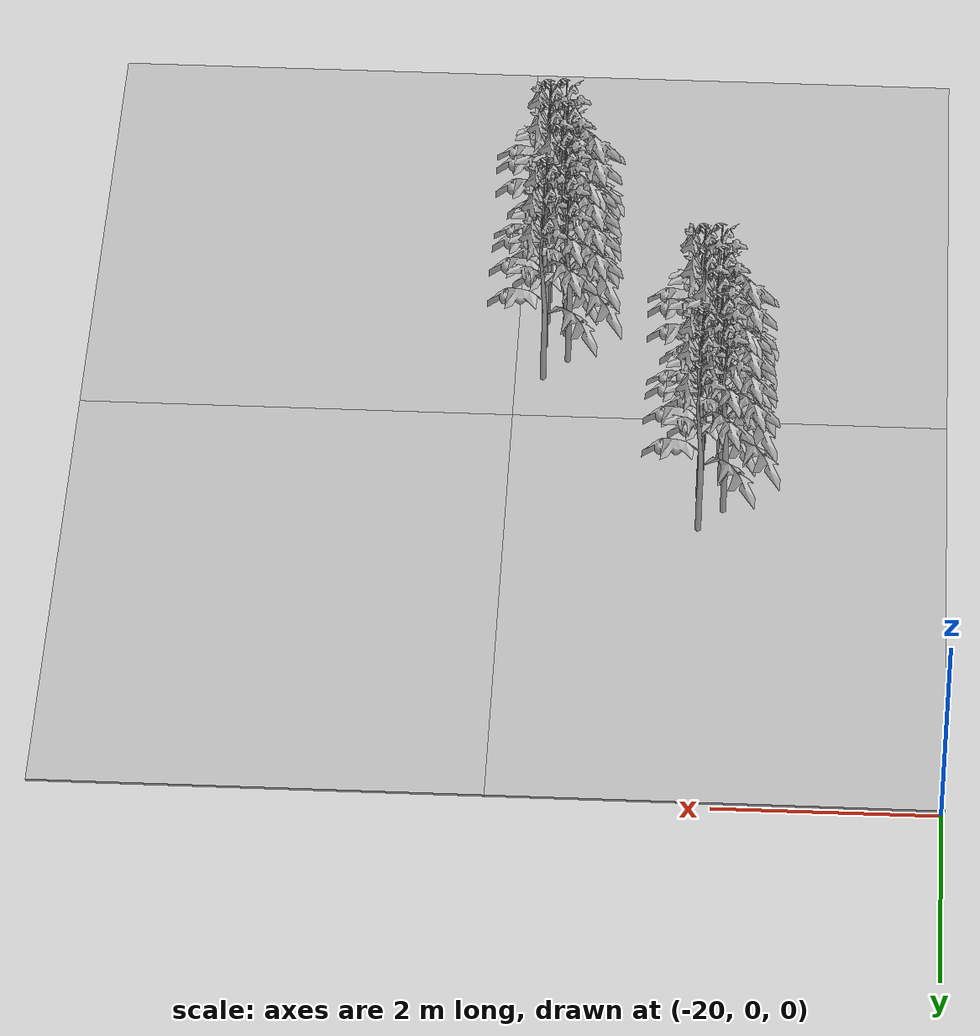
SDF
<sdf version="1.6">
 <world name="default">
  <model name="ground_plane">
   <static>1</static>
   <link name="link">
    <collision name="collision">
     <geometry><plane><normal>0 0 1</normal><size>100 100</size></plane></geometry>
     <surface>
      <contact><collide_bitmask>65535</collide_bitmask></contact>
      <friction><ode><mu>100</mu><mu2>50</mu2></ode></friction>
     </surface>
    </collision>
    <visual name="visual">
     <cast_shadows>0</cast_shadows>
     <geometry><plane><normal>0 0 1</normal><size>100 100</size></plane></geometry>
     <material>
      <script><uri>file://media/materials/scripts/gazebo.material</uri><name>Gazebo/Grey</name></script>
     </material>
    </visual>
   </link>
  </model>
  <model name="Middle_Plant_1">
   <model name="tomato_plant_big">
    <static>1</static>
    <link name="link">
     <collision name="collision">
      <geometry>
       <mesh><scale>5e-06 5e-06 6e-06</scale><uri>model://tomato_plant_big/meshes/tomato-plant.dae</uri></mesh>
      </geometry>
     </collision>
     <visual name="visual">
      <geometry>
       <mesh><scale>5e-06 5e-06 7e-06</scale><uri>model://tomato_plant_big/meshes/tomato-plant.dae</uri></mesh>
      </geometry>
     </visual>
    </link>
    <pose>0.085326 1.23023 0 0 -0 0</pose>
   </model>
   <model name="tomato_plant_big_0">
    <static>1</static>
    <link name="link">
     <collision name="collision">
      <geometry>
       <mesh><scale>5e-06 5e-06 6e-06</scale><uri>model://tomato_plant_big/meshes/tomato-plant.dae</uri></mesh>
      </geometry>
     </collision>
     <visual name="visual">
      <geometry>
       <mesh><scale>5e-06 5e-06 7e-06</scale><uri>model://tomato_plant_big/meshes/tomato-plant.dae</uri></mesh>
      </geometry>
     </visual>
    </link>
    <pose>-0.133881 0.970183 0 0 -0 0</pose>
   </model>
   <model name="tomato_plant_big_1">
    <static>1</static>
    <link name="link">
     <collision name="collision">
      <geometry>
       <mesh><scale>5e-06 5e-06 6e-06</scale><uri>model://tomato_plant_big/meshes/tomato-plant.dae</uri></mesh>
      </geometry>
     </collision>
     <visual name="visual">
      <geometry>
       <mesh><scale>5e-06 5e-06 7e-06</scale><uri>model://tomato_plant_big/meshes/tomato-plant.dae</uri></mesh>
      </geometry>
     </visual>
    </link>
    <pose>0.091162 0.792381 0 0 -0 0</pose>
   </model>
   <model name="tomato_plant_big_2">
    <static>1</static>
    <link name="link">
     <collision name="collision">
      <geometry>
       <mesh><scale>5e-06 5e-06 6e-06</scale><uri>model://tomato_plant_big/meshes/tomato-plant.dae</uri></mesh>
      </geometry>
     </collision>
     <visual name="visual">
      <geometry>
       <mesh><scale>5e-06 5e-06 7e-06</scale><uri>model://tomato_plant_big/meshes/tomato-plant.dae</uri></mesh>
      </geometry>
     </visual>
    </link>
    <pose>-0.099228 0.602587 0 0 -0 0</pose>
   </model>
   <model name="tomato_plant_big_3">
    <static>1</static>
    <link name="link">
     <collision name="collision">
      <geometry>
       <mesh><scale>5e-06 5e-06 6e-06</scale><uri>model://tomato_plant_big/meshes/tomato-plant.dae</uri></mesh>
      </geometry>
     </collision>
     <visual name="visual">
      <geometry>
       <mesh><scale>5e-06 5e-06 7e-06</scale><uri>model://tomato_plant_big/meshes/tomato-plant.dae</uri></mesh>
      </geometry>
     </visual>
    </link>
    <pose>0.083199 0.447645 0 0 -0 0</pose>
   </model>
   <model name="tomato_plant_big_4">
    <static>1</static>
    <link name="link">
     <collision name="collision">
      <geometry>
       <mesh><scale>5e-06 5e-06 6e-06</scale><uri>model://tomato_plant_big/meshes/tomato-plant.dae</uri></mesh>
      </geometry>
     </collision>
     <visual name="visual">
      <geometry>
       <mesh><scale>5e-06 5e-06 7e-06</scale><uri>model://tomato_plant_big/meshes/tomato-plant.dae</uri></mesh>
      </geometry>
     </visual>
    </link>
    <pose>-0.079499 0.263486 0 0 -0 0</pose>
   </model>
   <model name="tomato_plant_big_5">
    <static>1</static>
    <link name="link">
     <collision name="collision">
      <geometry>
       <mesh><scale>5e-06 5e-06 6e-06</scale><uri>model://tomato_plant_big/meshes/tomato-plant.dae</uri></mesh>
      </geometry>
     </collision>
     <visual name="visual">
      <geometry>
       <mesh><scale>5e-06 5e-06 7e-06</scale><uri>model://tomato_plant_big/meshes/tomato-plant.dae</uri></mesh>
      </geometry>
     </visual>
    </link>
    <pose>-0.033274 -0.040578 0 0 -0 0</pose>
   </model>
   <model name="tomato_plant_big_6">
    <static>1</static>
    <link name="link">
     <collision name="collision">
      <geometry>
       <mesh><scale>5e-06 5e-06 6e-06</scale><uri>model://tomato_plant_big/meshes/tomato-plant.dae</uri></mesh>
      </geometry>
     </collision>
     <visual name="visual">
      <geometry>
       <mesh><scale>5e-06 5e-06 7e-06</scale><uri>model://tomato_plant_big/meshes/tomato-plant.dae</uri></mesh>
      </geometry>
     </visual>
    </link>
    <pose>-0.07669 -0.382406 0 0 -0 0</pose>
   </model>
   <model name="tomato_plant_big_7">
    <static>1</static>
    <link name="link">
     <collision name="collision">
      <geometry>
       <mesh><scale>5e-06 5e-06 6e-06</scale><uri>model://tomato_plant_big/meshes/tomato-plant.dae</uri></mesh>
      </geometry>
     </collision>
     <visual name="visual">
      <geometry>
       <mesh><scale>5e-06 5e-06 7e-06</scale><uri>model://tomato_plant_big/meshes/tomato-plant.dae</uri></mesh>
      </geometry>
     </visual>
    </link>
    <pose>0.092388 -0.348189 0 0 -0 0</pose>
   </model>
   <model name="tomato_plant_big_8">
    <static>1</static>
    <link name="link">
     <collision name="collision">
      <geometry>
       <mesh><scale>5e-06 5e-06 6e-06</scale><uri>model://tomato_plant_big/meshes/tomato-plant.dae</uri></mesh>
      </geometry>
     </collision>
     <visual name="visual">
      <geometry>
       <mesh><scale>5e-06 5e-06 7e-06</scale><uri>model://tomato_plant_big/meshes/tomato-plant.dae</uri></mesh>
      </geometry>
     </visual>
    </link>
    <pose>0.099522 -0.697525 0 0 -0 0</pose>
   </model>
   <model name="tomato_plant_big_9">
    <static>1</static>
    <link name="link">
     <collision name="collision">
      <geometry>
       <mesh><scale>5e-06 5e-06 6e-06</scale><uri>model://tomato_plant_big/meshes/tomato-plant.dae</uri></mesh>
      </geometry>
     </collision>
     <visual name="visual">
      <geometry>
       <mesh><scale>5e-06 5e-06 7e-06</scale><uri>model://tomato_plant_big/meshes/tomato-plant.dae</uri></mesh>
      </geometry>
     </visual>
    </link>
    <pose>-0.050449 -0.712772 0 0 -0 0</pose>
   </model>
   <model name="tomato_plant_medium">
    <static>1</static>
    <link name="link">
     <collision name="collision">
      <geometry>
       <mesh><scale>5e-06 5e-06 6e-06</scale><uri>model://tomato_plant_medium/meshes/tomato-plant.dae</uri></mesh>
      </geometry>
     </collision>
     <visual name="visual">
      <geometry>
       <mesh><scale>5e-06 5e-06 6e-06</scale><uri>model://tomato_plant_medium/meshes/tomato-plant.dae</uri></mesh>
      </geometry>
     </visual>
    </link>
    <pose>0.078434 0.139842 0 0 -0 0</pose>
   </model>
   <model name="tomato_plant_medium_0">
    <static>1</static>
    <link name="link">
     <collision name="collision">
      <geometry>
       <mesh><scale>5e-06 5e-06 6e-06</scale><uri>model://tomato_plant_medium/meshes/tomato-plant.dae</uri></mesh>
      </geometry>
     </collision>
     <visual name="visual">
      <geometry>
       <mesh><scale>5e-06 5e-06 6e-06</scale><uri>model://tomato_plant_medium/meshes/tomato-plant.dae</uri></mesh>
      </geometry>
     </visual>
    </link>
    <pose>-0.079755 -0.244483 0 0 -0 0</pose>
   </model>
   <model name="tomato_plant_medium_1">
    <static>1</static>
    <link name="link">
     <collision name="collision">
      <geometry>
       <mesh><scale>5e-06 5e-06 6e-06</scale><uri>model://tomato_plant_medium/meshes/tomato-plant.dae</uri></mesh>
      </geometry>
     </collision>
     <visual name="visual">
      <geometry>
       <mesh><scale>5e-06 5e-06 6e-06</scale><uri>model://tomato_plant_medium/meshes/tomato-plant.dae</uri></mesh>
      </geometry>
     </visual>
    </link>
    <pose>0.106744 -1.01815 0 0 -0 0</pose>
   </model>
   <model name="tomato_plant_small">
    <static>1</static>
    <link name="link">
     <collision name="collision">
      <geometry>
       <mesh><scale>5e-06 5e-06 5e-06</scale><uri>model://tomato_plant_small/meshes/tomato-plant.dae</uri></mesh>
      </geometry>
     </collision>
     <visual name="visual">
      <geometry>
       <mesh><scale>5e-06 5e-06 5e-06</scale><uri>model://tomato_plant_small/meshes/tomato-plant.dae</uri></mesh>
      </geometry>
     </visual>
    </link>
    <pose>-0.083979 -1.00222 0 0 -0 0</pose>
   </model>
   <static>0</static>
   <pose>-17.8578 -4.83213 0 0 -0 0</pose>
  </model>
  <model name="Middle_Plant_13">
   <model name="tomato_plant_big">
    <static>1</static>
    <link name="link">
     <collision name="collision">
      <geometry>
       <mesh><scale>5e-06 5e-06 6e-06</scale><uri>model://tomato_plant_big/meshes/tomato-plant.dae</uri></mesh>
      </geometry>
     </collision>
     <visual name="visual">
      <geometry>
       <mesh><scale>5e-06 5e-06 7e-06</scale><uri>model://tomato_plant_big/meshes/tomato-plant.dae</uri></mesh>
      </geometry>
     </visual>
    </link>
    <pose>0.085326 1.23023 0 0 -0 0</pose>
   </model>
   <model name="tomato_plant_big_0">
    <static>1</static>
    <link name="link">
     <collision name="collision">
      <geometry>
       <mesh><scale>5e-06 5e-06 6e-06</scale><uri>model://tomato_plant_big/meshes/tomato-plant.dae</uri></mesh>
      </geometry>
     </collision>
     <visual name="visual">
      <geometry>
       <mesh><scale>5e-06 5e-06 7e-06</scale><uri>model://tomato_plant_big/meshes/tomato-plant.dae</uri></mesh>
      </geometry>
     </visual>
    </link>
    <pose>-0.133881 0.970183 0 0 -0 0</pose>
   </model>
   <model name="tomato_plant_big_1">
    <static>1</static>
    <link name="link">
     <collision name="collision">
      <geometry>
       <mesh><scale>5e-06 5e-06 6e-06</scale><uri>model://tomato_plant_big/meshes/tomato-plant.dae</uri></mesh>
      </geometry>
     </collision>
     <visual name="visual">
      <geometry>
       <mesh><scale>5e-06 5e-06 7e-06</scale><uri>model://tomato_plant_big/meshes/tomato-plant.dae</uri></mesh>
      </geometry>
     </visual>
    </link>
    <pose>0.091162 0.792381 0 0 -0 0</pose>
   </model>
   <model name="tomato_plant_big_2">
    <static>1</static>
    <link name="link">
     <collision name="collision">
      <geometry>
       <mesh><scale>5e-06 5e-06 6e-06</scale><uri>model://tomato_plant_big/meshes/tomato-plant.dae</uri></mesh>
      </geometry>
     </collision>
     <visual name="visual">
      <geometry>
       <mesh><scale>5e-06 5e-06 7e-06</scale><uri>model://tomato_plant_big/meshes/tomato-plant.dae</uri></mesh>
      </geometry>
     </visual>
    </link>
    <pose>-0.099228 0.602587 0 0 -0 0</pose>
   </model>
   <model name="tomato_plant_big_3">
    <static>1</static>
    <link name="link">
     <collision name="collision">
      <geometry>
       <mesh><scale>5e-06 5e-06 6e-06</scale><uri>model://tomato_plant_big/meshes/tomato-plant.dae</uri></mesh>
      </geometry>
     </collision>
     <visual name="visual">
      <geometry>
       <mesh><scale>5e-06 5e-06 7e-06</scale><uri>model://tomato_plant_big/meshes/tomato-plant.dae</uri></mesh>
      </geometry>
     </visual>
    </link>
    <pose>0.083199 0.447645 0 0 -0 0</pose>
   </model>
   <model name="tomato_plant_big_4">
    <static>1</static>
    <link name="link">
     <collision name="collision">
      <geometry>
       <mesh><scale>5e-06 5e-06 6e-06</scale><uri>model://tomato_plant_big/meshes/tomato-plant.dae</uri></mesh>
      </geometry>
     </collision>
     <visual name="visual">
      <geometry>
       <mesh><scale>5e-06 5e-06 7e-06</scale><uri>model://tomato_plant_big/meshes/tomato-plant.dae</uri></mesh>
      </geometry>
     </visual>
    </link>
    <pose>-0.079499 0.263486 0 0 -0 0</pose>
   </model>
   <model name="tomato_plant_big_5">
    <static>1</static>
    <link name="link">
     <collision name="collision">
      <geometry>
       <mesh><scale>5e-06 5e-06 6e-06</scale><uri>model://tomato_plant_big/meshes/tomato-plant.dae</uri></mesh>
      </geometry>
     </collision>
     <visual name="visual">
      <geometry>
       <mesh><scale>5e-06 5e-06 7e-06</scale><uri>model://tomato_plant_big/meshes/tomato-plant.dae</uri></mesh>
      </geometry>
     </visual>
    </link>
    <pose>-0.033274 -0.040578 0 0 -0 0</pose>
   </model>
   <model name="tomato_plant_big_6">
    <static>1</static>
    <link name="link">
     <collision name="collision">
      <geometry>
       <mesh><scale>5e-06 5e-06 6e-06</scale><uri>model://tomato_plant_big/meshes/tomato-plant.dae</uri></mesh>
      </geometry>
     </collision>
     <visual name="visual">
      <geometry>
       <mesh><scale>5e-06 5e-06 7e-06</scale><uri>model://tomato_plant_big/meshes/tomato-plant.dae</uri></mesh>
      </geometry>
     </visual>
    </link>
    <pose>-0.07669 -0.382406 0 0 -0 0</pose>
   </model>
   <model name="tomato_plant_big_7">
    <static>1</static>
    <link name="link">
     <collision name="collision">
      <geometry>
       <mesh><scale>5e-06 5e-06 6e-06</scale><uri>model://tomato_plant_big/meshes/tomato-plant.dae</uri></mesh>
      </geometry>
     </collision>
     <visual name="visual">
      <geometry>
       <mesh><scale>5e-06 5e-06 7e-06</scale><uri>model://tomato_plant_big/meshes/tomato-plant.dae</uri></mesh>
      </geometry>
     </visual>
    </link>
    <pose>0.092388 -0.348189 0 0 -0 0</pose>
   </model>
   <model name="tomato_plant_big_8">
    <static>1</static>
    <link name="link">
     <collision name="collision">
      <geometry>
       <mesh><scale>5e-06 5e-06 6e-06</scale><uri>model://tomato_plant_big/meshes/tomato-plant.dae</uri></mesh>
      </geometry>
     </collision>
     <visual name="visual">
      <geometry>
       <mesh><scale>5e-06 5e-06 7e-06</scale><uri>model://tomato_plant_big/meshes/tomato-plant.dae</uri></mesh>
      </geometry>
     </visual>
    </link>
    <pose>0.099522 -0.697525 0 0 -0 0</pose>
   </model>
   <model name="tomato_plant_big_9">
    <static>1</static>
    <link name="link">
     <collision name="collision">
      <geometry>
       <mesh><scale>5e-06 5e-06 6e-06</scale><uri>model://tomato_plant_big/meshes/tomato-plant.dae</uri></mesh>
      </geometry>
     </collision>
     <visual name="visual">
      <geometry>
       <mesh><scale>5e-06 5e-06 7e-06</scale><uri>model://tomato_plant_big/meshes/tomato-plant.dae</uri></mesh>
      </geometry>
     </visual>
    </link>
    <pose>-0.050449 -0.712772 0 0 -0 0</pose>
   </model>
   <model name="tomato_plant_medium">
    <static>1</static>
    <link name="link">
     <collision name="collision">
      <geometry>
       <mesh><scale>5e-06 5e-06 6e-06</scale><uri>model://tomato_plant_medium/meshes/tomato-plant.dae</uri></mesh>
      </geometry>
     </collision>
     <visual name="visual">
      <geometry>
       <mesh><scale>5e-06 5e-06 6e-06</scale><uri>model://tomato_plant_medium/meshes/tomato-plant.dae</uri></mesh>
      </geometry>
     </visual>
    </link>
    <pose>0.078434 0.139842 0 0 -0 0</pose>
   </model>
   <model name="tomato_plant_medium_0">
    <static>1</static>
    <link name="link">
     <collision name="collision">
      <geometry>
       <mesh><scale>5e-06 5e-06 6e-06</scale><uri>model://tomato_plant_medium/meshes/tomato-plant.dae</uri></mesh>
      </geometry>
     </collision>
     <visual name="visual">
      <geometry>
       <mesh><scale>5e-06 5e-06 6e-06</scale><uri>model://tomato_plant_medium/meshes/tomato-plant.dae</uri></mesh>
      </geometry>
     </visual>
    </link>
    <pose>-0.079755 -0.244483 0 0 -0 0</pose>
   </model>
   <model name="tomato_plant_medium_1">
    <static>1</static>
    <link name="link">
     <collision name="collision">
      <geometry>
       <mesh><scale>5e-06 5e-06 6e-06</scale><uri>model://tomato_plant_medium/meshes/tomato-plant.dae</uri></mesh>
      </geometry>
     </collision>
     <visual name="visual">
      <geometry>
       <mesh><scale>5e-06 5e-06 6e-06</scale><uri>model://tomato_plant_medium/meshes/tomato-plant.dae</uri></mesh>
      </geometry>
     </visual>
    </link>
    <pose>0.106744 -1.01815 0 0 -0 0</pose>
   </model>
   <model name="tomato_plant_small">
    <static>1</static>
    <link name="link">
     <collision name="collision">
      <geometry>
       <mesh><scale>5e-06 5e-06 5e-06</scale><uri>model://tomato_plant_small/meshes/tomato-plant.dae</uri></mesh>
      </geometry>
     </collision>
     <visual name="visual">
      <geometry>
       <mesh><scale>5e-06 5e-06 5e-06</scale><uri>model://tomato_plant_small/meshes/tomato-plant.dae</uri></mesh>
      </geometry>
     </visual>
    </link>
    <pose>-0.083979 -1.00222 0 0 -0 0</pose>
   </model>
   <static>0</static>
   <pose>-16.3624 -6.84124 0 0 -0 0</pose>
  </model>
  <model name="mud_box_4_clone">
   <static>1</static>
   <link name="link">
    <collision name="collision"><geometry><box><size>8 10 0.02</size></box></geometry></collision>
    <visual name="visual_1">
     <pose>-2 2.5 0 0 -0 0</pose>
     <cast_shadows>0</cast_shadows>
     <geometry><box><size>4 5 0.02</size></box></geometry>
     <material>
      <script>
       <uri>model://mud_box/materials/scripts</uri>
       <uri>model://mud_box/materials/textures</uri>
       <name>vrc/mud</name>
      </script>
     </material>
    </visual>
    <visual name="visual_2">
     <pose>2 2.5 0 0 -0 0</pose>
     <cast_shadows>0</cast_shadows>
     <geometry><box><size>4 5 0.02</size></box></geometry>
     <material>
      <script>
       <uri>model://mud_box/materials/scripts</uri>
       <uri>model://mud_box/materials/textures</uri>
       <name>vrc/mud</name>
      </script>
     </material>
    </visual>
    <visual name="visual_3">
     <pose>2 -2.5 0 0 -0 0</pose>
     <cast_shadows>0</cast_shadows>
     <geometry><box><size>4 5 0.02</size></box></geometry>
     <material>
      <script>
       <uri>model://mud_box/materials/scripts</uri>
       <uri>model://mud_box/materials/textures</uri>
       <name>vrc/mud</name>
      </script>
     </material>
    </visual>
    <visual name="visual_4">
     <pose>-2 -2.5 0 0 -0 0</pose>
     <cast_shadows>0</cast_shadows>
     <geometry><box><size>4 5 0.02</size></box></geometry>
     <material>
      <script>
       <uri>model://mud_box/materials/scripts</uri>
       <uri>model://mud_box/materials/textures</uri>
       <name>vrc/mud</name>
      </script>
     </material>
    </visual>
   </link>
   <pose>-16.0278 -5.06387 0 0 -0 0</pose>
  </model>
 </world>
</sdf>
